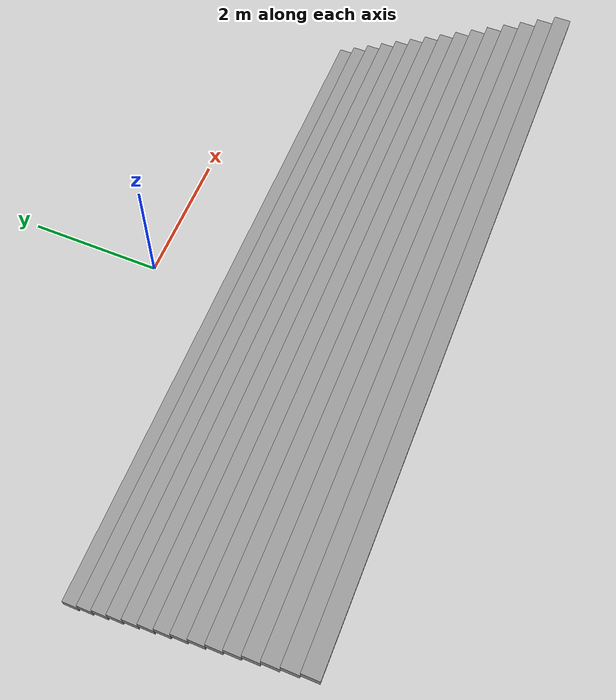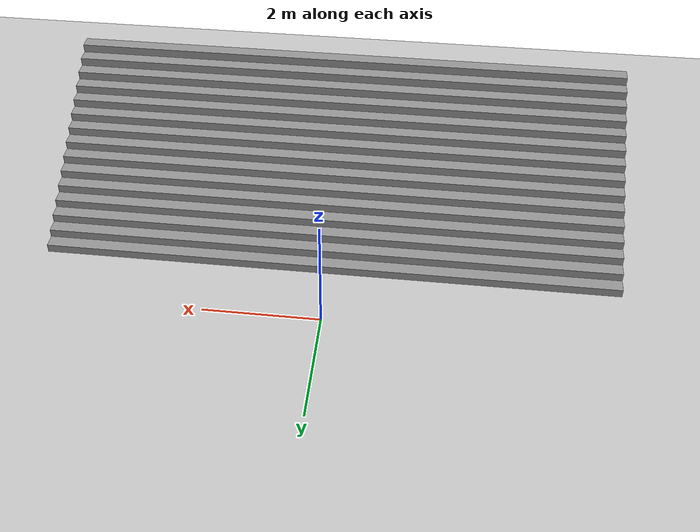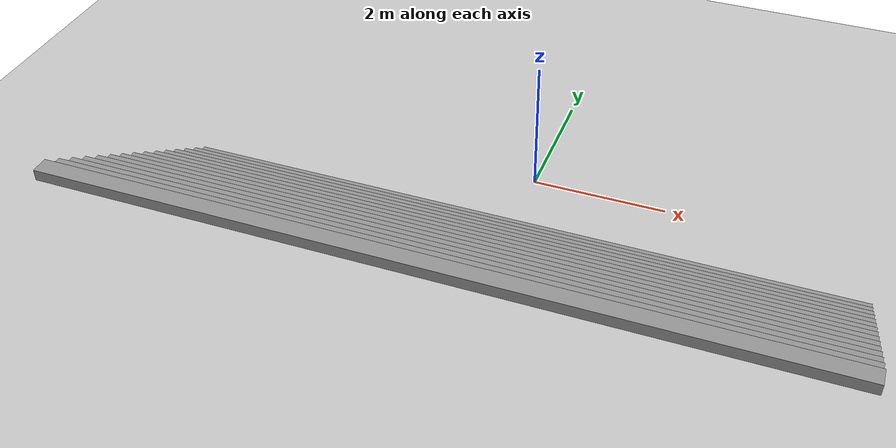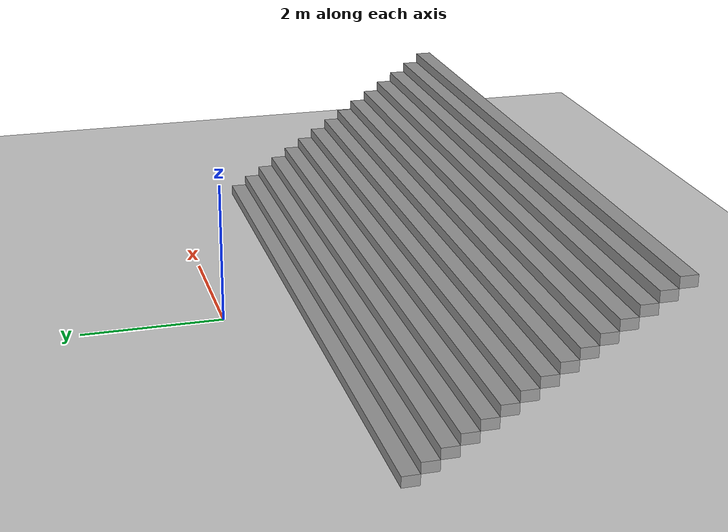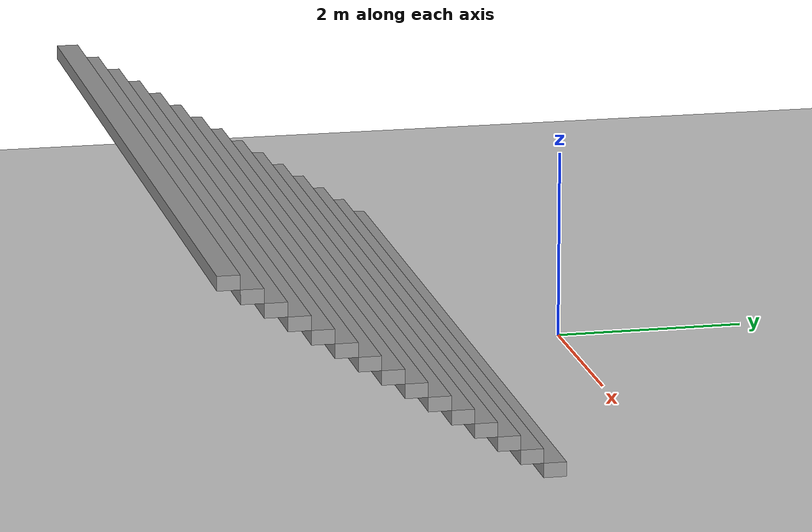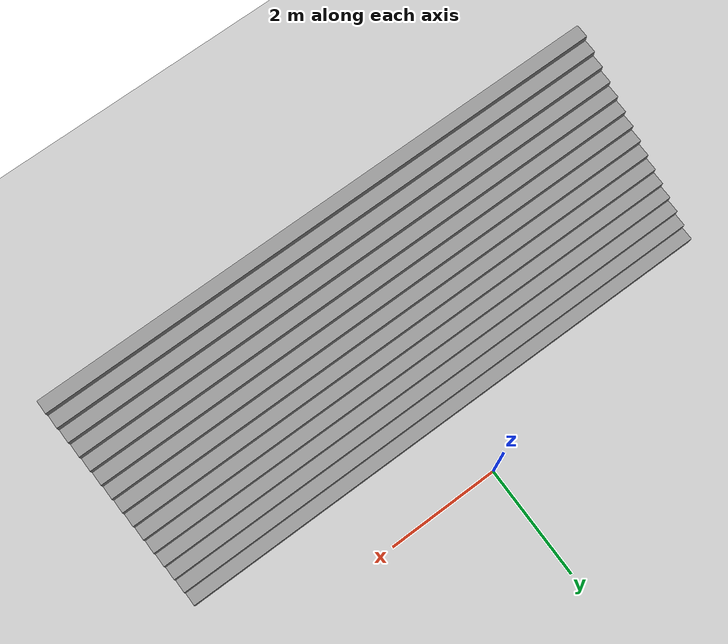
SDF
<sdf version="1.7">
 <world name="default">
  <light name="sun" type="directional">
   <pose>0 0 10 0 -0 0</pose>
   <diffuse>0.8 0.8 0.8 1</diffuse>
   <specular>0.2 0.2 0.2 1</specular>
   <attenuation>
    <range>1000</range>
    <constant>0.9</constant>
    <linear>0.01</linear>
    <quadratic>0.001</quadratic>
   </attenuation>
   <direction>-0.5 0.1 -0.9</direction>
   <spot><inner_angle>0</inner_angle><outer_angle>0</outer_angle><falloff>0</falloff></spot>
  </light>
  <model name="ground_plane">
   <static>1</static>
   <link name="link">
    <collision name="collision">
     <geometry><plane><normal>0 0 1</normal><size>100 100</size></plane></geometry>
     <surface>
      <contact><collide_bitmask>65535</collide_bitmask></contact>
      <friction><ode><mu>100</mu><mu2>50</mu2></ode></friction>
     </surface>
    </collision>
    <visual name="visual">
     <cast_shadows>0</cast_shadows>
     <geometry><plane><normal>0 0 1</normal><size>100 100</size></plane></geometry>
     <material>
      <script><uri>file://media/materials/scripts/gazebo.material</uri><name>Gazebo/Grey</name></script>
     </material>
    </visual>
   </link>
  </model>
  <gravity>0 0 -9.8</gravity>
  <magnetic_field>6e-06 2.3e-05 -4.2e-05</magnetic_field>
  <atmosphere type="adiabatic"/>
  <physics type="ode">
   <max_step_size>0.001</max_step_size>
   <real_time_factor>1</real_time_factor>
   <real_time_update_rate>1000</real_time_update_rate>
  </physics>
  <scene><ambient>0.4 0.4 0.4 1</ambient><background>0.7 0.7 0.7 1</background><shadows>1</shadows></scene>
  <spherical_coordinates>
   <surface_model>EARTH_WGS84</surface_model>
   <latitude_deg>0</latitude_deg>
   <longitude_deg>0</longitude_deg>
   <elevation>0</elevation>
   <heading_deg>0</heading_deg>
  </spherical_coordinates>
  <model name="Untitled">
   <pose>0.01 -2.3 0 0 -0 0</pose>
   <link name="Stairs_0">
    <visual name="Stairs_0_Visual_0">
     <pose>-0 1.08333 0.075 0 -0 0</pose>
     <geometry><box><size>10 0.233333 0.15</size></box></geometry>
     <material>
      <script><uri>file://media/materials/scripts/gazebo.material</uri><name>Gazebo/Grey</name></script>
      <ambient>1 1 1 1</ambient>
     </material>
     <meta><layer>0</layer></meta>
    </visual>
    <collision name="Stairs_0_Collision_0">
     <geometry><box><size>10 0.233333 0.15</size></box></geometry>
     <pose>-0 1.08333 0.075 0 -0 0</pose>
    </collision>
    <visual name="Stairs_0_Visual_1">
     <pose>-0 0.85 0.225 0 -0 0</pose>
     <geometry><box><size>10 0.233333 0.15</size></box></geometry>
     <material>
      <script><uri>file://media/materials/scripts/gazebo.material</uri><name>Gazebo/Grey</name></script>
      <ambient>1 1 1 1</ambient>
     </material>
     <meta><layer>0</layer></meta>
    </visual>
    <collision name="Stairs_0_Collision_1">
     <geometry><box><size>10 0.233333 0.15</size></box></geometry>
     <pose>-0 0.85 0.225 0 -0 0</pose>
    </collision>
    <visual name="Stairs_0_Visual_2">
     <pose>-0 0.616667 0.375 0 -0 0</pose>
     <geometry><box><size>10 0.233333 0.15</size></box></geometry>
     <material>
      <script><uri>file://media/materials/scripts/gazebo.material</uri><name>Gazebo/Grey</name></script>
      <ambient>1 1 1 1</ambient>
     </material>
     <meta><layer>0</layer></meta>
    </visual>
    <collision name="Stairs_0_Collision_2">
     <geometry><box><size>10 0.233333 0.15</size></box></geometry>
     <pose>-0 0.616667 0.375 0 -0 0</pose>
    </collision>
    <visual name="Stairs_0_Visual_3">
     <pose>-0 0.383333 0.525 0 -0 0</pose>
     <geometry><box><size>10 0.233333 0.15</size></box></geometry>
     <material>
      <script><uri>file://media/materials/scripts/gazebo.material</uri><name>Gazebo/Grey</name></script>
      <ambient>1 1 1 1</ambient>
     </material>
     <meta><layer>0</layer></meta>
    </visual>
    <collision name="Stairs_0_Collision_3">
     <geometry><box><size>10 0.233333 0.15</size></box></geometry>
     <pose>-0 0.383333 0.525 0 -0 0</pose>
    </collision>
    <visual name="Stairs_0_Visual_4">
     <pose>-0 0.15 0.675 0 -0 0</pose>
     <geometry><box><size>10 0.233333 0.15</size></box></geometry>
     <material>
      <script><uri>file://media/materials/scripts/gazebo.material</uri><name>Gazebo/Grey</name></script>
      <ambient>1 1 1 1</ambient>
     </material>
     <meta><layer>0</layer></meta>
    </visual>
    <collision name="Stairs_0_Collision_4">
     <geometry><box><size>10 0.233333 0.15</size></box></geometry>
     <pose>-0 0.15 0.675 0 -0 0</pose>
    </collision>
    <visual name="Stairs_0_Visual_5">
     <pose>-0 -0.083333 0.825 0 -0 0</pose>
     <geometry><box><size>10 0.233333 0.15</size></box></geometry>
     <material>
      <script><uri>file://media/materials/scripts/gazebo.material</uri><name>Gazebo/Grey</name></script>
      <ambient>1 1 1 1</ambient>
     </material>
     <meta><layer>0</layer></meta>
    </visual>
    <collision name="Stairs_0_Collision_5">
     <geometry><box><size>10 0.233333 0.15</size></box></geometry>
     <pose>-0 -0.083333 0.825 0 -0 0</pose>
    </collision>
    <visual name="Stairs_0_Visual_6">
     <pose>-0 -0.316667 0.975 0 -0 0</pose>
     <geometry><box><size>10 0.233333 0.15</size></box></geometry>
     <material>
      <script><uri>file://media/materials/scripts/gazebo.material</uri><name>Gazebo/Grey</name></script>
      <ambient>1 1 1 1</ambient>
     </material>
     <meta><layer>0</layer></meta>
    </visual>
    <collision name="Stairs_0_Collision_6">
     <geometry><box><size>10 0.233333 0.15</size></box></geometry>
     <pose>-0 -0.316667 0.975 0 -0 0</pose>
    </collision>
    <visual name="Stairs_0_Visual_7">
     <pose>-0 -0.55 1.125 0 -0 0</pose>
     <geometry><box><size>10 0.233333 0.15</size></box></geometry>
     <material>
      <script><uri>file://media/materials/scripts/gazebo.material</uri><name>Gazebo/Grey</name></script>
      <ambient>1 1 1 1</ambient>
     </material>
     <meta><layer>0</layer></meta>
    </visual>
    <collision name="Stairs_0_Collision_7">
     <geometry><box><size>10 0.233333 0.15</size></box></geometry>
     <pose>-0 -0.55 1.125 0 -0 0</pose>
    </collision>
    <visual name="Stairs_0_Visual_8">
     <pose>-0 -0.783333 1.275 0 -0 0</pose>
     <geometry><box><size>10 0.233333 0.15</size></box></geometry>
     <material>
      <script><uri>file://media/materials/scripts/gazebo.material</uri><name>Gazebo/Grey</name></script>
      <ambient>1 1 1 1</ambient>
     </material>
     <meta><layer>0</layer></meta>
    </visual>
    <collision name="Stairs_0_Collision_8">
     <geometry><box><size>10 0.233333 0.15</size></box></geometry>
     <pose>-0 -0.783333 1.275 0 -0 0</pose>
    </collision>
    <visual name="Stairs_0_Visual_9">
     <pose>-0 -1.01667 1.425 0 -0 0</pose>
     <geometry><box><size>10 0.233333 0.15</size></box></geometry>
     <material>
      <script><uri>file://media/materials/scripts/gazebo.material</uri><name>Gazebo/Grey</name></script>
      <ambient>1 1 1 1</ambient>
     </material>
     <meta><layer>0</layer></meta>
    </visual>
    <collision name="Stairs_0_Collision_9">
     <geometry><box><size>10 0.233333 0.15</size></box></geometry>
     <pose>-0 -1.01667 1.425 0 -0 0</pose>
    </collision>
    <visual name="Stairs_0_Visual_10">
     <pose>-0 -1.25 1.575 0 -0 0</pose>
     <geometry><box><size>10 0.233333 0.15</size></box></geometry>
     <material>
      <script><uri>file://media/materials/scripts/gazebo.material</uri><name>Gazebo/Grey</name></script>
      <ambient>1 1 1 1</ambient>
     </material>
     <meta><layer>0</layer></meta>
    </visual>
    <collision name="Stairs_0_Collision_10">
     <geometry><box><size>10 0.233333 0.15</size></box></geometry>
     <pose>-0 -1.25 1.575 0 -0 0</pose>
    </collision>
    <visual name="Stairs_0_Visual_11">
     <pose>-0 -1.48333 1.725 0 -0 0</pose>
     <geometry><box><size>10 0.233333 0.15</size></box></geometry>
     <material>
      <script><uri>file://media/materials/scripts/gazebo.material</uri><name>Gazebo/Grey</name></script>
      <ambient>1 1 1 1</ambient>
     </material>
     <meta><layer>0</layer></meta>
    </visual>
    <collision name="Stairs_0_Collision_11">
     <geometry><box><size>10 0.233333 0.15</size></box></geometry>
     <pose>-0 -1.48333 1.725 0 -0 0</pose>
    </collision>
    <visual name="Stairs_0_Visual_12">
     <pose>-0 -1.71667 1.875 0 -0 0</pose>
     <geometry><box><size>10 0.233333 0.15</size></box></geometry>
     <material>
      <script><uri>file://media/materials/scripts/gazebo.material</uri><name>Gazebo/Grey</name></script>
      <ambient>1 1 1 1</ambient>
     </material>
     <meta><layer>0</layer></meta>
    </visual>
    <collision name="Stairs_0_Collision_12">
     <geometry><box><size>10 0.233333 0.15</size></box></geometry>
     <pose>-0 -1.71667 1.875 0 -0 0</pose>
    </collision>
    <visual name="Stairs_0_Visual_13">
     <pose>-0 -1.95 2.025 0 -0 0</pose>
     <geometry><box><size>10 0.233333 0.15</size></box></geometry>
     <material>
      <script><uri>file://media/materials/scripts/gazebo.material</uri><name>Gazebo/Grey</name></script>
      <ambient>1 1 1 1</ambient>
     </material>
     <meta><layer>0</layer></meta>
    </visual>
    <collision name="Stairs_0_Collision_13">
     <geometry><box><size>10 0.233333 0.15</size></box></geometry>
     <pose>-0 -1.95 2.025 0 -0 0</pose>
    </collision>
    <visual name="Stairs_0_Visual_14">
     <pose>-0 -2.18333 2.175 0 -0 0</pose>
     <geometry><box><size>10 0.233333 0.15</size></box></geometry>
     <material>
      <script><uri>file://media/materials/scripts/gazebo.material</uri><name>Gazebo/Grey</name></script>
      <ambient>1 1 1 1</ambient>
     </material>
     <meta><layer>0</layer></meta>
    </visual>
    <collision name="Stairs_0_Collision_14">
     <geometry><box><size>10 0.233333 0.15</size></box></geometry>
     <pose>-0 -2.18333 2.175 0 -0 0</pose>
    </collision>
   </link>
   <static>1</static>
  </model>
 </world>
</sdf>
